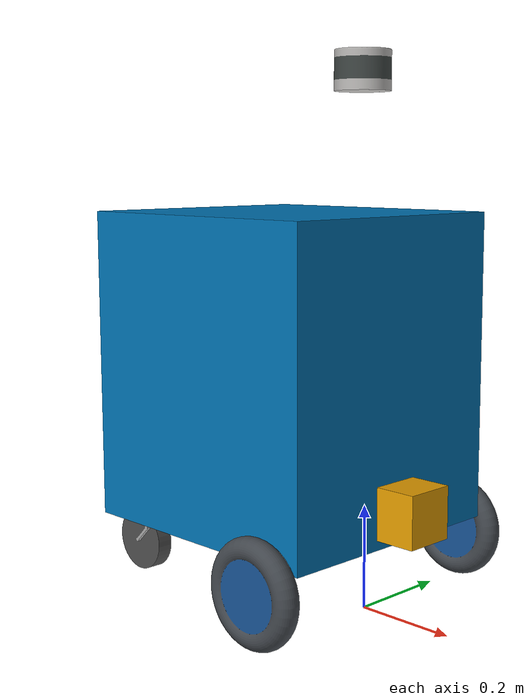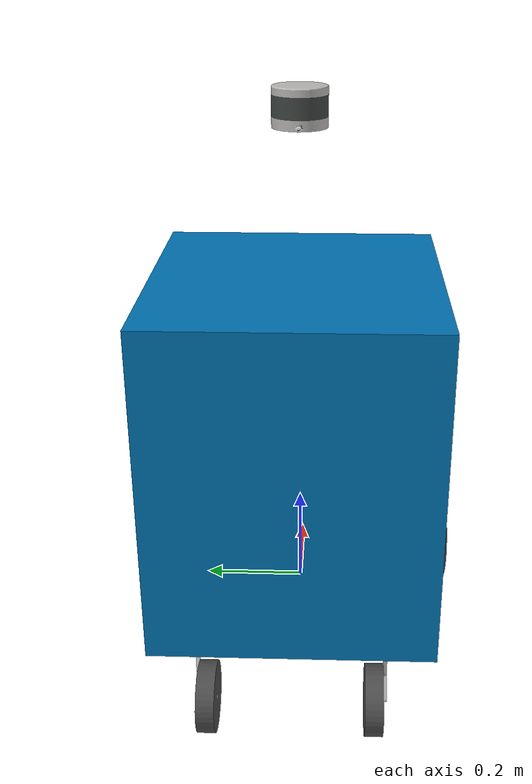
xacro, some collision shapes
<?xml version="1.0"?>
<!-- Revolute-Revolute Manipulator -->
<robot name="orange2022" xmlns:xacro="http://www.ros.org/wiki/xacro">

  <!-- Constants for robot dimensions -->
  <xacro:property name="PI" value="3.1415926535897931"/>

  <!-- Macro -->
  <xacro:macro name="box_inertia" params="m x y z">
    <inertia ixx="${m*(y*y+z*z)/12.0}" ixy = "0.0" ixz = "0.0"
             iyy="${m*(z*z+x*x)/12.0}" iyz = "0.0"
             izz="${m*(x*x+y*y)/12.0}" />
  </xacro:macro>
  <xacro:macro name="cylinder_inertia" params="m r h">
    <inertia ixx="${m*(3*r*r+h*h)/12.0}" ixy = "0.0" ixz = "0.0"
             iyy="${m*(3*r*r+h*h)/12.0}" iyz = "0.0"
             izz="${m*r*r/2.0}" />
  </xacro:macro>

  <!-- Import gazebo reference -->
  <xacro:include filename="$(find tsukuba2022)/urdf/orange2022.gazebo"/>

  <!-- Import 2D LiDAR model -->
  <xacro:include filename="$(find tsukuba2022)/urdf/sensors/hokuyo.urdf.xacro"/>
  <xacro:sensor_hokuyo name="hokuyo" parent="base_link" min_angle="-1.22" max_angle="1.22" samples="720">
    <origin xyz="0.1075 0.0 0.1085" rpy="0.0 0.0 0.0"/>
  </xacro:sensor_hokuyo>

  <!-- Import 3D LiDAR model -->
  <xacro:include filename="$(find tsukuba2022)/urdf/sensors/velodyne.urdf.xacro"/>
  <xacro:sensor_velodyne name="velodyne" parent="base_link" min_angle="-2.35619" max_angle="2.35619" samples="720">
    <origin xyz="-0.0185 0.0 0.8985" rpy="0.0 0.0 0.0"/>
  </xacro:sensor_velodyne>

  <!-- Import imu model -->
  <xacro:include filename="$(find tsukuba2022)/urdf/sensors/imu.urdf.xacro"/>
  <xacro:sensor_imu name="imu" parent="base_link" size="0.05 0.05 0.05">
    <origin xyz="-0.253 0.0 0.068" rpy="0.0 0.0 0.0"/>
  </xacro:sensor_imu>

  <!-- Base Footprint -->
  <joint name="base_joint" type="fixed">
    <parent link="base_footprint"/>
    <child link="base_link"/>
    <origin xyz="0.0 0.0 0.1015" rpy="0 0 0"/>
  </joint>

  <link name="base_footprint"/>

  <!-- Base Link -->
  <link name="base_link">
    <collision>
      <origin xyz="-0.1995 0.0 0.341" rpy="0.0 0.0 0.0"/>
      <geometry>
        <box size="0.549 0.5055 0.603"/>
      </geometry>
    </collision>

    <visual>
      <origin xyz="0.0775 0.25275 0.6425" rpy="0.0 0.0 0.0"/>
      <geometry>
        <mesh filename="package://tsukuba2022/meshes/chassis.dae"/>
      </geometry>
    </visual>

    <inertial>
       <mass value="27.1" />
       <origin xyz="-0.1995 0.0 0.19" rpy="0.0 0.0 0.0"/>
       <xacro:box_inertia m="27.1" x="0.549" y="0.5055" z="0.3"/>
    </inertial>
  </link>

  <!-- Back wheels -->
  <joint name="left_caster_hinge" type ="fixed">
    <origin xyz="0.0 0.0 0.0" rpy="0.0 0.0 0.0"/>
    <child link="left_caster_link"/>
    <parent link="base_link"/>
  </joint>

  <joint name="right_caster_hinge" type ="fixed">
    <origin xyz="0.0 0.0 0.0" rpy="0.0 0.0 0.0"/>
    <child link="right_caster_link"/>
    <parent link="base_link"/>
  </joint>

  <link name="left_caster_link">
    <collision>
      <origin xyz="-0.4815 0.145 -0.039" rpy="0.0 ${PI/2} ${PI/2}"/>
      <geometry>
        <sphere radius="0.0625"/>
      </geometry>
    </collision>

    <visual>
      <origin xyz="-0.4815 0.145 -0.039" rpy="0.0 0.0 0.0"/>
      <geometry>
        <mesh filename="package://tsukuba2022/meshes/left_back_wheel.dae"/>
      </geometry>
    </visual>
  </link>

  <link name="right_caster_link">
    <collision>
      <origin xyz="-0.4815 -0.145 -0.039" rpy="0.0 ${PI/2} ${PI/2}"/>
      <geometry>
        <sphere radius="0.0625"/>
      </geometry>
    </collision>

    <visual>
      <origin xyz="-0.4815 -0.145 -0.039" rpy="0.0 0.0 0.0"/>
      <geometry>
        <mesh filename="package://tsukuba2022/meshes/right_back_wheel.dae"/>
        <sphere radius="0.0625"/>
      </geometry>
    </visual>
  </link>

  <!-- Front wheels -->
  <joint type="revolute" name="left_wheel_hinge">
    <origin xyz="0.0 0.2834 0.0" rpy="0.0 0.0 0.0"/>
    <child link="left_wheel">left_wheel</child>
    <parent link="base_link">base_link</parent>
    <axis xyz="0 1 0"/>
    <limit effort="100" velocity="100.0"  lower="-5000" upper="5000" />
  </joint>

  <joint type="revolute" name="right_wheel_hinge">
    <origin xyz="0.0 -0.2834 0.0" rpy="0.0 0.0 0.0"/>
    <child link="right_wheel">right_wheel</child>
    <parent link="base_link">base_link</parent>
    <axis xyz="0 1 0"/>
    <limit effort="100" velocity="100.0"  lower="-5000" upper="5000" />
  </joint>

  <link name="left_wheel">
    <collision name="collision">
      <origin xyz="0.0 0.0 0.0" rpy="0.0 ${PI/2} ${PI/2}"/>
      <geometry>
        <cylinder length="0.047" radius="0.1015"/>
      </geometry>
    </collision>

    <visual name="visual">
      <origin xyz="0.0 0.0 0.0" rpy="0.0 0.0 0.0"/>
      <geometry>
        <mesh filename="package://tsukuba2022/meshes/front_wheel.dae"/>
      </geometry>
    </visual>

    <inertial>
       <mass value="3.4" />
       <origin xyz="0.0 0.0 0.0" rpy="0.0 ${PI/2} ${PI/2}"/>
       <xacro:cylinder_inertia m="3.4" r="0.1015" h="0.047"/>
    </inertial>
  </link>

  <link name="right_wheel">
    <collision name="collision">
      <origin xyz="0.0 0.0 0.0" rpy="0.0 ${PI/2} ${PI/2}"/>
      <geometry>
        <cylinder length="0.047" radius="0.1015"/>
      </geometry>
    </collision>

    <visual name="visual">
      <origin xyz="0.0 0.0 0.0" rpy="0.0 0.0 0.0"/>
      <geometry>
        <mesh filename="package://tsukuba2022/meshes/front_wheel.dae"/>
      </geometry>
    </visual>

    <inertial>
       <mass value="3.4" />
       <origin xyz="0.0 0.0 0.0" rpy="0.0 ${PI/2} ${PI/2}"/>
       <xacro:cylinder_inertia m="3.4" r="0.1015" h="0.047"/>
    </inertial>
  </link>
</robot>

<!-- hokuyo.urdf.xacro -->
<robot name="sensor_hokuyo" xmlns:xacro="http://ros.org/wiki/xacro"
                              xmlns:controller="http://playerstage.sourceforge.net/gazebo/xmlschema/#controller"
                              xmlns:interface="http://playerstage.sourceforge.net/gazebo/xmlschema/#interface">

  <xacro:property name="hokuyo_link" value="0.1" /> <!-- Size of square 'hokuyo' box -->
  <xacro:macro name="sensor_hokuyo" params="name parent *origin min_angle max_angle samples">
    <joint name="${name}_joint" type="fixed">
    	<xacro:insert_block name="origin"/>
      <axis xyz="0 1 0"/>
      <parent link="${parent}"/>
      <child link="${name}_link"/>
    </joint>

    <link name="${name}_link">
      <collision>
        <origin xyz="0 0 0" rpy="0 0 0"/>
        <geometry>
            <box size="${hokuyo_link} ${hokuyo_link} ${hokuyo_link}"/>
        </geometry>
      </collision>

      <visual>
        <origin xyz="0 0 0" rpy="0 0 0"/>
        <geometry>
          <mesh filename="package://igvc2023/meshes/hokuyo.dae"/>
        </geometry>
      </visual>

      <inertial>
        <mass value="0.0001"/>
        <origin xyz="0 0 0" rpy="0 0 0"/>
        <inertia ixx="0.0001" ixy="0" ixz="0" iyy="0.0001" iyz="0" izz="0.0001"/>
      </inertial>
    </link>

    <gazebo reference="hokuyo_link">
    <sensor type="ray" name="head_hokuyo_sensor">
      <pose>0 0 0 0 0 0</pose>
      <visualize>false</visualize>
      <update_rate>40</update_rate>
      <ray>
        <scan>
          <horizontal>
            <resolution>1</resolution>
            <samples>${samples}</samples>
            <min_angle>${min_angle}</min_angle>
            <max_angle>${max_angle}</max_angle>
          </horizontal>
        </scan>
        <range>
          <min>0.10</min>
          <max>30.0</max>
          <resolution>0.01</resolution>
        </range>
        <noise>
          <type>gaussian</type>
          <mean>0.0</mean>
          <stddev>0.01</stddev>
        </noise>
      </ray>
      <plugin name="gazebo_ros_head_hokuyo_controller" filename="libgazebo_ros_laser.so">
        <topicName>/hokuyo_scan</topicName>
        <frameName>hokuyo_link</frameName>
      </plugin>
    </sensor>
  </gazebo>

  </xacro:macro>

</robot>

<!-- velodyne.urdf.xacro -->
<robot name="sensor_velodyne" xmlns:xacro="http://ros.org/wiki/xacro"
                              xmlns:controller="http://playerstage.sourceforge.net/gazebo/xmlschema/#controller"
                              xmlns:interface="http://playerstage.sourceforge.net/gazebo/xmlschema/#interface">

  <xacro:property name="velodyne_link" value="0.1" /> <!-- Size of square 'hokuyo' box -->
  <xacro:macro name="sensor_velodyne" params="name parent *origin min_angle max_angle samples">
    <joint name="${name}_joint" type="fixed">
      <xacro:insert_block name="origin"/>
      <axis xyz="0 1 0"/>
      <parent link="${parent}"/>
      <child link="${name}_link"/>
    </joint>

    <link name="${name}_link">
      <collision>
        <origin xyz="0 0 0" rpy="0 0 0"/>
        <geometry>
            <box size="0.1 0.1 0.1"/>
        </geometry>
      </collision>

      <visual>
        <origin xyz="0 0 0" rpy="0 0 0"/>
        <geometry>
          <mesh filename="package://igvc2023/meshes/velodyne.dae"/>
        </geometry>
      </visual>

      <inertial>
        <mass value="0.0001"/>
        <origin xyz="0 0 0" rpy="0 0 0"/>
        <inertia ixx="0.0001" ixy="0" ixz="0" iyy="0.0001" iyz="0" izz="0.0001"/>
      </inertial>
    </link>

    <gazebo reference="velodyne_link">
      <sensor type="ray" name="head_velodyne_sensor">
        <pose>0 0 0 0 0 0</pose>
        <visualize>false</visualize>
        <update_rate>10</update_rate>
        <ray>
          <scan>
            <horizontal>
              <resolution>1</resolution>
              <samples>1875</samples>
              <min_angle>${-PI}</min_angle>
              <max_angle>${PI}</max_angle>
            </horizontal>
            <vertical>
              <resolution>1</resolution>
              <samples>16</samples>
              <min_angle>${-PI/12}</min_angle>
              <max_angle>${PI/12}</max_angle>
            </vertical>
          </scan>
          <range>
            <min>0.9</min>
            <max>100</max>
            <resolution>0.001</resolution>
          </range>
        </ray>

        <plugin name="gazebo_ros_laser_controller" filename="libgazebo_ros_velodyne_laser.so">
          <topicName>velodyne_points</topicName>
          <frameName>velodyne_link</frameName>
          <min_range>0.9</min_range>
          <max_range>100</max_range>
          <gaussianNoise>0.01</gaussianNoise>
        </plugin>
      </sensor>
    </gazebo>

  </xacro:macro>

</robot>

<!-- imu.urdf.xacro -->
<robot name="sensor_imu" xmlns:xacro="http://ros.org/wiki/xacro"
                         xmlns:controller="http://playerstage.sourceforge.net/gazebo/xmlschema/#controller"
                         xmlns:interface="http://playerstage.sourceforge.net/gazebo/xmlschema/#interface">

  <xacro:macro name="sensor_imu" params="name parent *origin size">
    <joint name="${name}_joint" type="fixed">
        <xacro:insert_block name="origin"/>
        <axis xyz="1 0 0"/>
        <parent link="${parent}"/>
        <child link="${name}_link"/>
    </joint>

    <link name="${name}_link">
        <inertial>
          <mass value="0.001"/>
          <origin rpy="0 0 0" xyz="0 0 0"/>
          <inertia ixx="0.0001" ixy="0" ixz="0" iyy="0.000001" iyz="0" izz="0.0001"/>
        </inertial>
        <visual>
          <origin rpy="0 0 0" xyz="0 0 0"/>
          <geometry>
            <box size="${size}"/>
          </geometry>
        </visual>
        <collision>
          <origin rpy="0 0 0" xyz="0 0 0"/>
          <geometry>
            <box size="${size}"/>
          </geometry>
        </collision>
    </link>

    <gazebo reference="${name}_link">
      <sensor type="imu" name="imu">
        <always_on>true</always_on>
        <topic>imu</topic>
        <plugin name="imu_plugin" filename="libgazebo_ros_imu_sensor.so">
          <bodyName>${name}_link</bodyName> <!-- bodyName always set base_link by URDF parser -->
          <frameName>${name}_link</frameName>
          <topicName>imu</topicName>
          <updateRateHZ>100.0</updateRateHZ>
          <gaussianNoise>0.001</gaussianNoise>
          <xyzOffset>0 0 0</xyzOffset>
          <rpyOffset>0 0 0</rpyOffset>
        </plugin>
      </sensor>
      <material>Gazebo/White</material>
    </gazebo>
  </xacro:macro>

</robot>
